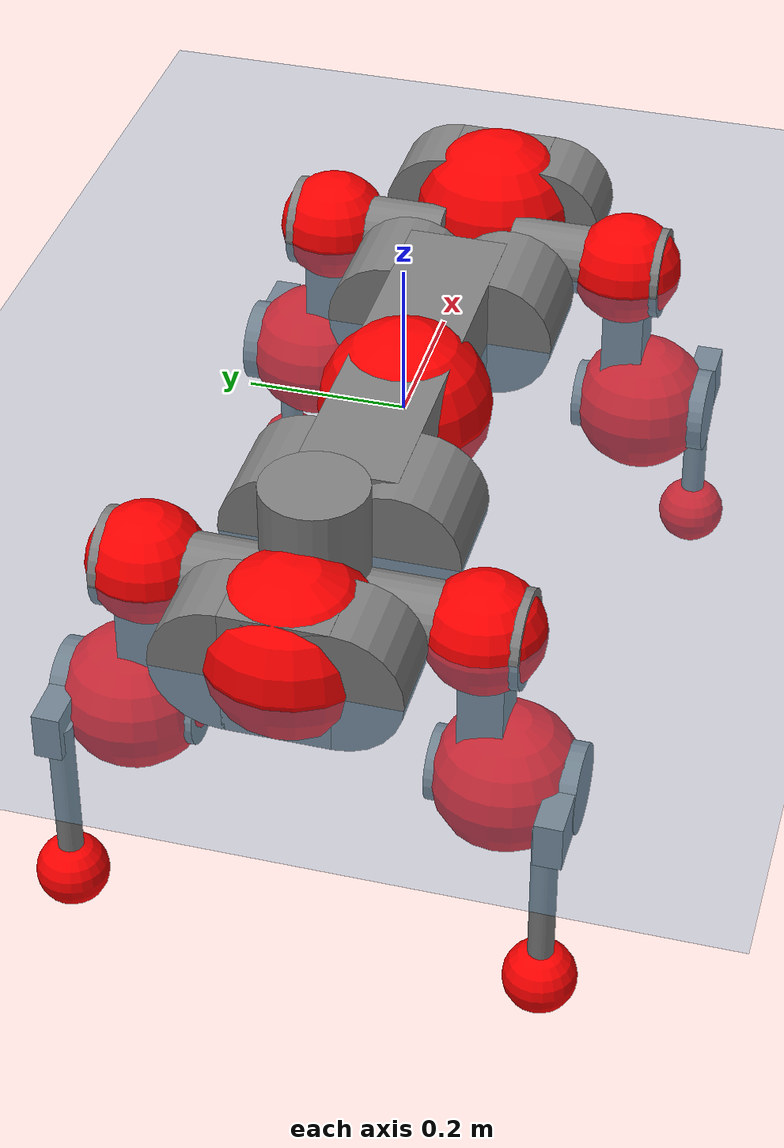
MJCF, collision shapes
<mujoco model="anymal_c">
  <compiler angle="radian" assetdir="assets" balanceinertia="true" inertiafromgeom="false"/>

  <option timestep="0.005" density="1.2" viscosity="2e-05"/>

  <size nkey="1"/>

  <visual>
    <quality shadowsize="8192"/>
    <map shadowclip="0.5"/>
  </visual>

  <default>
    <default class="/">
      <material specular="0" shininess="0.25"/>
      <geom contype="0" conaffinity="0" group="1" solref="-1000 -80"/>
      <site size="0.01 0.005 0.005" group="5"/>
      <general forcelimited="true" forcerange="-80 80" biastype="affine" gainprm="80" biasprm="0 -80 -2"/>
      <default class="anymal_c">
        <joint armature="0.01" damping="0.01" frictionloss="0.1"/>
        <default class="visual">
          <geom type="mesh" group="2"/>
          <default class="visual_zflip"/>
        </default>
        <default class="collision">
          <geom type="cylinder" group="3"/>
          <default class="foot">
            <geom size="0.03 0 0" type="sphere" condim="6" priority="1" friction="0.8 0.02 0.01" solimp="0.015 1 0.03"/>
          </default>
        </default>
      </default>
      <default class="reward_collision_sphere">
        <geom group="5" rgba="1 0 0 1"/>
      </default>
    </default>
  </default>

  <asset>
    <texture type="skybox" colorspace="auto" name="//unnamed_texture_0" builtin="gradient" rgb1="0.95 0.95 0.95" rgb2="0.95 0.95 0.95" width="100" height="600"/>
    <texture type="2d" colorspace="auto" name="texplane" builtin="checker" rgb1="0.345 0.575 0.748" rgb2="0.345 0.575 0.748" markrgb="1 1 1" width="512" height="512"/>
    <texture type="2d" colorspace="linear" name="base" file="base.png"/>
    <texture type="2d" colorspace="linear" name="top_shell" file="top_shell.png"/>
    <texture type="2d" colorspace="linear" name="bottom_shell" file="bottom_shell.png"/>
    <texture type="2d" colorspace="linear" name="remote" file="remote.png"/>
    <texture type="2d" colorspace="linear" name="hatch" file="hatch.png"/>
    <texture type="2d" colorspace="linear" name="handle" file="handle.png"/>
    <texture type="2d" colorspace="linear" name="face" file="face.png"/>
    <texture type="2d" colorspace="linear" name="battery" file="battery.png"/>
    <texture type="2d" colorspace="linear" name="lidar_cage" file="lidar_cage.png"/>
    <texture type="2d" colorspace="linear" name="depth_camera" file="depth_camera.png"/>
    <texture type="2d" colorspace="linear" name="wide_angle_camera" file="wide_angle_camera.png"/>
    <texture type="2d" colorspace="linear" name="lidar" file="lidar.png"/>
    <texture type="2d" colorspace="linear" name="drive" file="drive.png"/>
    <texture type="2d" colorspace="linear" name="hip_l" file="hip_l.png"/>
    <texture type="2d" colorspace="linear" name="shank_l" file="shank_l.png"/>
    <texture type="2d" colorspace="linear" name="foot" file="foot.png"/>
    <texture type="2d" colorspace="linear" name="thigh" file="thigh.png"/>
    <texture type="2d" colorspace="linear" name="shank_r" file="shank_r.png"/>
    <texture type="2d" colorspace="linear" name="hip_r" file="hip_r.png"/>
    <material name="MatPlane" class="/" texture="texplane" texuniform="true" texrepeat="2 2" specular="0.9" shininess="0.5"/>
    <material name="black_plastic" class="/" rgba="0.007 0.007 0.007 1"/>
    <material name="green" class="/" rgba="0.052 0.178 0.033 1"/>
    <material name="red" class="/" rgba="0.178 0.006 0.005 1"/>
    <material name="yellow" class="/" rgba="0.178 0.119 0.006 1"/>
    <material name="lwl" class="/" rgba="0.8 0.8 0.8 1"/>
    <material name="base" class="/" texture="base"/>
    <material name="top_shell" class="/" texture="top_shell"/>
    <material name="bottom_shell" class="/" texture="bottom_shell"/>
    <material name="hip_l" class="/" texture="hip_l"/>
    <material name="thigh" class="/" texture="thigh"/>
    <material name="shank_l" class="/" texture="shank_l"/>
    <material name="foot" class="/" texture="foot"/>
    <material name="hip_r" class="/" texture="hip_r"/>
    <material name="shank" class="/" texture="shank_r"/>
    <material name="hatch" class="/" texture="hatch"/>
    <material name="remote" class="/" texture="remote"/>
    <material name="handle" class="/" texture="handle"/>
    <material name="face" class="/" texture="face"/>
    <material name="depth_camera" class="/" texture="depth_camera"/>
    <material name="wide_angle_camera" class="/" texture="wide_angle_camera"/>
    <material name="battery" class="/" texture="battery"/>
    <material name="lidar_cage" class="/" texture="lidar_cage"/>
    <material name="lidar" class="/" texture="lidar"/>
    <material name="drive" class="/" texture="drive"/>
    <mesh name="base_0" class="/" file="base_0.obj"/>
    <mesh name="base_1" class="/" file="base_1.obj"/>
    <mesh name="base_2" class="/" file="base_2.obj"/>
    <mesh name="base_3" class="/" file="base_3.obj"/>
    <mesh name="base_4" class="/" file="base_4.obj"/>
    <mesh name="base_5" class="/" file="base_5.obj"/>
    <mesh name="top_shell" class="/" file="top_shell.obj"/>
    <mesh name="bottom_shell" class="/" file="bottom_shell.obj"/>
    <mesh name="remote" class="/" file="remote.obj"/>
    <mesh name="handle" class="/" file="handle.obj"/>
    <mesh name="face" class="/" file="face.obj"/>
    <mesh name="wide_angle_camera" class="/" file="wide_angle_camera.obj"/>
    <mesh name="depth_camera" class="/" file="depth_camera.obj"/>
    <mesh name="battery" class="/" file="battery.obj"/>
    <mesh name="lidar_cage" class="/" file="lidar_cage.obj"/>
    <mesh name="lidar" class="/" file="lidar.obj"/>
    <mesh name="drive" class="/" file="drive.obj"/>
    <mesh name="hip_l" class="/" file="hip_l.obj"/>
    <mesh name="thigh" class="/" file="thigh.obj"/>
    <mesh name="shank_l" class="/" file="shank_l.obj"/>
    <mesh name="foot" class="/" file="foot.obj"/>
    <mesh name="hip_r" class="/" file="hip_r.obj"/>
    <mesh name="hatch" class="/" file="hatch.obj"/>
    <mesh name="shank_r" class="/" file="shank_r.obj"/>
  </asset>

  <worldbody>
    <geom name="floor" class="/" size="100 100 0.125" type="plane" group="0" material="MatPlane"/>
    <light name="toplight_shadow" class="/" pos="0 0 5" dir="0.0990148 0.0990148 -0.990148" type="directional" ambient="0.04 0.04 0.04" diffuse="0.55 0.55 0.55" specular="0.12 0.12 0.12"/>
    <light name="toplight_fill" class="/" pos="0 0 5" dir="0.0990148 0.0990148 -0.990148" type="directional" castshadow="false" ambient="0.04 0.04 0.04" diffuse="0.3 0.3 0.3" specular="0.08 0.08 0.08"/>
    <body name="trunk" childclass="anymal_c" pos="0.00222486 -0.000695355 0.00543352" quat="0.999997 0.00134092 -0.000678449 -0.00166563">
      <inertial pos="0.00362127 -0.00290878 0.0313068" quat="0.487228 0.497845 0.498424 0.516074" mass="14.0662" diaginertia="0.776081 0.421186 0.0484263"/>
      <joint name="//unnamed_joint_0" type="free" armature="0" damping="0" frictionloss="0"/>
      <geom name="//unnamed_geom_1" class="visual" material="green" mesh="base_0"/>
      <geom name="//unnamed_geom_2" class="visual" material="yellow" mesh="base_1"/>
      <geom name="//unnamed_geom_3" class="visual" material="red" mesh="base_2"/>
      <geom name="//unnamed_geom_4" class="visual" material="black_plastic" mesh="base_3"/>
      <geom name="//unnamed_geom_5" class="visual" material="lwl" mesh="base_4"/>
      <geom name="//unnamed_geom_6" class="visual" material="base" mesh="base_5"/>
      <geom name="trunk_1" class="collision" size="0.266621 0.0643568 0.0827444" type="box"/>
      <geom name="trunk_2" class="collision" size="0.0827444 0.0666552" pos="0.231045 0.0661611 0" quat="0.707107 0 0.707107 0"/>
      <geom name="trunk_3" class="collision" size="0.0827444 0.0666552" pos="-0.231045 0.0661611 0" quat="0.707107 0 0.707107 0"/>
      <geom name="trunk_4" class="collision" size="0.0827444 0.0666552" pos="0.231045 -0.0661611 0" quat="0.707107 0 0.707107 0"/>
      <geom name="trunk_5" class="collision" size="0.0827444 0.0666552" pos="-0.231045 -0.0661611 0" quat="0.707107 0 0.707107 0"/>
      <geom name="//unnamed_geom_12" class="visual" material="top_shell" mesh="top_shell"/>
      <geom name="//unnamed_geom_13" class="visual" material="bottom_shell" mesh="bottom_shell"/>
      <geom name="//unnamed_geom_14" class="visual" material="remote" mesh="remote"/>
      <geom name="//unnamed_geom_15" class="visual" material="handle" mesh="handle"/>
      <geom name="//unnamed_geom_16" class="visual" pos="0.440314 0 0" quat="1 0 0 0" material="face" mesh="face"/>
      <geom name="trunk_6" class="collision" size="0.050566 0.0643568 0.0827444" pos="0.498739 0 0" type="box"/>
      <geom name="//unnamed_geom_18" class="collision" size="0.0827444 0.050566" pos="0.498739 0.0661611 0" quat="0.707107 0 0.707107 0"/>
      <geom name="//unnamed_geom_19" class="collision" size="0.0827444 0.050566" pos="0.498739 -0.0661611 0" quat="0.707107 0 0.707107 0"/>
      <geom name="//unnamed_geom_20" class="visual" pos="0.490387 0 -0.0195529" quat="0.965926 0 0.258819 0" material="depth_camera" mesh="depth_camera"/>
      <geom name="//unnamed_geom_21" class="visual" pos="0.544948 0 0.0112381" material="wide_angle_camera" mesh="wide_angle_camera"/>
      <geom name="//unnamed_geom_22" class="visual_zflip" pos="-0.440314 0 0" quat="0 0 0 1" material="face" mesh="face"/>
      <geom name="trunk_7" class="collision" size="0.050566 0.0643568 0.0827444" pos="-0.498739 0 0" quat="0 0 0 1" type="box"/>
      <geom name="//unnamed_geom_24" class="collision" size="0.0827444 0.050566" pos="-0.498739 -0.0661611 0" quat="0 -0.707107 0 0.707107"/>
      <geom name="//unnamed_geom_25" class="collision" size="0.0827444 0.050566" pos="-0.498739 0.0661611 0" quat="0 -0.707107 0 0.707107"/>
      <geom name="//unnamed_geom_26" class="visual" pos="-0.490387 0 -0.0195529" quat="0 -0.258819 0 0.965926" material="depth_camera" mesh="depth_camera"/>
      <geom name="//unnamed_geom_27" class="visual_zflip" pos="-0.544948 0 0.0112381" quat="0 0 0 1" material="wide_angle_camera" mesh="wide_angle_camera"/>
      <geom name="//unnamed_geom_28" class="visual" material="battery" mesh="battery"/>
      <geom name="//unnamed_geom_29" class="visual" pos="0 0.0707171 0.0241761" quat="0.683013 -0.183013 0.183013 0.683013" material="depth_camera" mesh="depth_camera"/>
      <geom name="//unnamed_geom_30" class="visual" pos="0 -0.0707171 0.0241761" quat="0.683013 0.183013 0.183013 -0.683013" material="depth_camera" mesh="depth_camera"/>
      <geom name="//unnamed_geom_31" class="visual" pos="-0.386669 0 0.0551773" quat="1 0 0 0" material="lidar_cage" mesh="lidar_cage"/>
      <geom name="trunk_8" class="collision" size="0.0643568 0.0551629" pos="-0.386669 0 0.10022"/>
      <geom name="//unnamed_geom_33" class="visual" pos="-0.386669 -4.60126e-05 0.106751" quat="0.707107 0 0 -0.707107" material="lidar" mesh="lidar"/>
      <geom name="//unnamed_geom_34" class="visual" pos="0.318577 0.0982274 3.35424e-09" quat="0.258819 0.965926 0 0" material="drive" mesh="drive"/>
      <geom name="//unnamed_geom_35" class="visual" pos="0.318577 -0.0982274 -3.35424e-09" quat="0.258819 -0.965926 0 0" material="drive" mesh="drive"/>
      <geom name="//unnamed_geom_36" class="visual" pos="-0.318577 0.0982274 -3.35424e-09" quat="0 0 0.965926 -0.258819" material="drive" mesh="drive"/>
      <geom name="//unnamed_geom_37" class="visual" pos="-0.318577 -0.0982274 3.35424e-09" quat="0 0 -0.965926 -0.258819" material="drive" mesh="drive"/>
      <geom name="//unnamed_geom_38" class="visual" pos="0.123224 0 0.0548019" quat="1 0 0 0" material="hatch" mesh="hatch"/>
      <geom name="//unnamed_geom_39" class="reward_collision_sphere" size="0.110326"/>
      <geom name="//unnamed_geom_40" class="reward_collision_sphere" size="0.110326" pos="0.478025 0 0"/>
      <geom name="//unnamed_geom_41" class="reward_collision_sphere" size="0.110326" pos="-0.478025 0 0"/>
      <site name="imu" pos="0.276515 0.00684593 0.0462863" size="0.00919382"/>
      <camera name="track" pos="0 -1.89032 0" quat="0.707107 0.707107 0 0" mode="trackcom"/>
      <camera name="ego_camera" pos="0.478025 0 -0.0300284" quat="-0.5 -0.5 0.5 0.5"/>
      <body name="LF_HIP" pos="0.319968 0.100804 -0.000130067" quat="0.258696 0.965959 3.26315e-06 -0.000164088">
        <inertial pos="0.0641936 -0.014733 -0.00108175" quat="-0.120111 0.718251 -0.112286 0.676077" mass="2.16959" diaginertia="0.00775439 0.00361352 0.000781695"/>
        <joint name="LF_HAA" pos="0 0 0" axis="0.999849 0.0172882 0.00169512" stiffness="0.00476638" range="-0.7138 0.494702" armature="0.00937348" damping="0.0158648" frictionloss="0.0932824"/>
        <geom name="//unnamed_geom_42" class="visual" pos="0 0.000197315 -3.24088e-05" quat="0.258819 -0.965926 0 0" material="hip_l" mesh="hip_l"/>
        <geom name="//unnamed_geom_43" class="visual" pos="0.0636304 -0.0754906 -0.0421463" quat="0.183013 -0.683013 0.683013 0.183013" material="drive" mesh="drive"/>
        <geom name="//unnamed_geom_44" class="collision" size="0.0459691 0.0643568" pos="0.0636304 -0.0113039 -0.00518366" quat="-0.353553 -0.612372 0.612372 -0.353553"/>
        <body name="LF_THIGH" pos="0.0663371 -0.0693074 -0.0353662" quat="0.183079 -0.683066 0.682943 0.183009">
          <inertial pos="0.0327675 -0.000221191 -0.185533" quat="0.992998 0.00119116 -0.0761048 0.0903451" mass="2.56405" diaginertia="0.0439923 0.023458 0.00107538"/>
          <joint name="LF_HFE" pos="0 0 0" axis="0.999997 -0.00140986 0.00212571" stiffness="0.00136979" range="-3.14377 3.1307" armature="0.00988716" damping="0.000789333" frictionloss="0.0930202"/>
          <geom name="//unnamed_geom_45" class="visual" pos="0.00233019 3.67184e-06 0" quat="0.707107 0 0 -0.707107" material="thigh" mesh="thigh"/>
          <geom name="//unnamed_geom_46" class="collision" size="0.0597598 0.0367753" pos="0.0424911 0 0" quat="0.5 0.5 -0.5 -0.5"/>
          <geom name="//unnamed_geom_47" class="collision" size="0.0344768 0.0275815 0.129922" pos="0.0318683 0 -0.106086" quat="0.707107 0 0 -0.707107" type="box"/>
          <geom name="//unnamed_geom_48" class="visual" pos="0.106546 0 -0.213953" quat="1 0 0 0" material="drive" mesh="drive"/>
          <geom name="//unnamed_geom_49" class="collision" size="0.0459691 0.0643568" pos="0.032187 0 -0.213953" quat="0.707107 0 0.707107 0"/>
          <geom name="//unnamed_geom_50" class="reward_collision_sphere" size="0.0735506" pos="0.0265569 0 0"/>
          <body name="LF_SHANK" pos="0.109523 -0.00231702 -0.213294" quat="1 2.66497e-05 -6.81559e-05 -6.31145e-05">
            <inertial pos="0.0123365 -0.0530899 -0.0611794" quat="0.993113 -0.115407 4.43755e-05 -0.02019" mass="0.450165" diaginertia="0.014338 0.00706988 0.000266437"/>
            <joint name="LF_KFE" pos="0 0 0" axis="0.999985 -0.00310759 0.00445708" range="-3.01433 3.13587" armature="0.00832906" damping="0" frictionloss="0.065251"/>
            <geom name="//unnamed_geom_51" class="visual" pos="0.000759824 0.00405142 0" quat="0.707107 0 0 -0.707107" material="shank_l" mesh="shank_l"/>
            <geom name="LF_kfe_act" class="collision" size="0.0551629 0.0183876" pos="0.0212455 0 0" quat="0.5 0.5 -0.5 -0.5"/>
            <geom name="//unnamed_geom_53" class="collision" size="0.0528636 0.0310291 0.0174683" pos="0.0212455 -0.0543457 0" quat="0.5 0.5 -0.5 -0.5" type="box"/>
            <geom name="//unnamed_geom_54" class="visual" pos="0.0138625 -0.0818211 -0.253718" quat="0.382683 0 0 -0.92388" material="foot" mesh="foot"/>
            <geom name="LF_calf" class="collision" size="0.0160892 0.129865" pos="0.0138627 -0.0831267 -0.126859" quat="0.707107 0 0 -0.707107"/>
            <geom name="LF_foot" class="foot" size="0.031858" pos="0.0138627 -0.0831267 -0.236827" quat="0.707107 0 0 -0.707107"/>
            <geom name="//unnamed_geom_57" class="reward_collision_sphere" size="0.0919382" pos="-0.0531138 0 0"/>
            <geom name="//unnamed_geom_58" class="reward_collision_sphere" size="0.0459691" pos="0.0138627 -0.0831267 -0.236827"/>
            <site name="LF_foot" class="foot" pos="0.0138627 -0.0831267 -0.236827" quat="0.707107 0 0 -0.707107" size="0.00919382"/>
          </body>
        </body>
      </body>
      <body name="RF_HIP" pos="0.318766 -0.0992876 0.00160883" quat="0.256239 -0.966612 0.000926438 0.00107105">
        <inertial pos="0.0588367 0.0151463 -0.00493836" quat="0.120422 0.688261 0.105958 0.707509" mass="1.95742" diaginertia="0.00795818 0.00360632 0.000786679"/>
        <joint name="RF_HAA" pos="0 0 0" axis="1 -0.000350624 -9.3085e-05" stiffness="0.0114091" range="-0.384349 0.717106" armature="0.0101743" damping="0.0114077" frictionloss="0.0881239"/>
        <geom name="//unnamed_geom_59" class="visual" pos="0 -0.000197313 -3.24087e-05" quat="0.258819 0.965926 0 0" material="hip_r" mesh="hip_r"/>
        <geom name="//unnamed_geom_60" class="visual" pos="0.0636304 0.0754906 -0.0421463" quat="0.183013 0.683013 0.683013 -0.183013" material="drive" mesh="drive"/>
        <geom name="//unnamed_geom_61" class="collision" size="0.0459691 0.0643568" pos="0.0636304 0.0113039 -0.00518366" quat="-0.353553 0.612372 0.612372 0.353553"/>
        <body name="RF_THIGH" pos="0.0641949 0.0687605 -0.0339092" quat="0.183003 0.683149 0.682885 -0.182991">
          <inertial pos="0.0320531 -0.000607447 -0.185908" quat="0.991467 -0.00717056 -0.0853257 0.0982905" mass="2.33219" diaginertia="0.041531 0.0233999 0.00101555"/>
          <joint name="RF_HFE" pos="0 0 0" axis="0.999988 -0.00220766 0.00439975" range="-3.1471 3.14133" armature="0.00866042" damping="0.03982" frictionloss="0.103086"/>
          <geom name="//unnamed_geom_62" class="visual" pos="0.00233019 3.67184e-06 0" quat="0.707107 0 0 -0.707107" material="thigh" mesh="thigh"/>
          <geom name="//unnamed_geom_63" class="collision" size="0.0597598 0.0367753" pos="0.0424911 0 0" quat="0.5 0.5 0.5 0.5"/>
          <geom name="//unnamed_geom_64" class="collision" size="0.0344768 0.0275815 0.129922" pos="0.0318683 0 -0.106086" quat="0.707107 0 0 0.707107" type="box"/>
          <geom name="//unnamed_geom_65" class="visual" pos="0.106546 0 -0.213953" quat="1 0 0 0" material="drive" mesh="drive"/>
          <geom name="//unnamed_geom_66" class="collision" size="0.0459691 0.0643568" pos="0.032187 0 -0.213953" quat="0.707107 0 0.707107 0"/>
          <geom name="//unnamed_geom_67" class="reward_collision_sphere" size="0.0735506" pos="0.0265569 0 0"/>
          <body name="RF_SHANK" pos="0.11132 0.00136035 -0.212543" quat="0.999999 -0.000549641 -0.00107972 -8.45627e-05">
            <inertial pos="0.00379796 0.062096 -0.0628936" quat="0.989051 0.145316 -0.00818021 0.0243822" mass="0.467344" diaginertia="0.0142309 0.0070121 0.000283626"/>
            <joint name="RF_KFE" pos="0 0 0" axis="0.999917 -0.00216567 -0.012698" range="-3.12177 3.09235" armature="0.00966212" damping="0.0135928" frictionloss="0.0890344"/>
            <geom name="//unnamed_geom_68" class="visual" pos="0.00075982 -0.00405142 0" quat="0.707107 0 0 0.707107" material="shank" mesh="shank_r"/>
            <geom name="RF_kfe_act" class="collision" size="0.0551629 0.0183876" pos="0.0212455 0 0" quat="0.5 0.5 0.5 0.5"/>
            <geom name="//unnamed_geom_70" class="collision" size="0.0528636 0.0310291 0.0174683" pos="0.0212455 0.0543457 0" quat="0.5 0.5 0.5 0.5" type="box"/>
            <geom name="//unnamed_geom_71" class="visual" pos="0.0138629 0.0818211 -0.253718" quat="0.382683 0 0 0.92388" material="foot" mesh="foot"/>
            <geom name="RF_calf" class="collision" size="0.0160892 0.129865" pos="0.0138627 0.0831267 -0.126859" quat="0.707107 0 0 0.707107"/>
            <geom name="RF_foot" class="foot" size="0.0316685" pos="0.0138627 0.0831267 -0.236827" quat="0.707107 0 0 0.707107"/>
            <geom name="//unnamed_geom_74" class="reward_collision_sphere" size="0.0919382" pos="-0.0531138 0 0"/>
            <geom name="//unnamed_geom_75" class="reward_collision_sphere" size="0.0459691" pos="0.0138627 0.0831267 -0.236827"/>
            <site name="RF_foot" class="foot" pos="0.0138627 0.0831267 -0.236827" quat="0.707107 0 0 0.707107" size="0.00919382"/>
          </body>
        </body>
      </body>
      <body name="LH_HIP" pos="-0.316937 0.0995597 -0.00116975" quat="0.00031401 0.00127709 0.965921 -0.258835">
        <inertial pos="0.058273 0.0184163 -0.000735004" quat="0.135919 0.67596 0.122668 0.713833" mass="2.10915" diaginertia="0.00787291 0.00378333 0.000807626"/>
        <joint name="LH_HAA" pos="0 0 0" axis="0.999858 -0.0109344 -0.0127884" stiffness="0.00489887" range="-0.420624 0.634941" armature="0.00771526" damping="0.0157457" frictionloss="0.0956089"/>
        <geom name="//unnamed_geom_76" class="visual" pos="0 -0.000197313 -3.24087e-05" quat="-0.258819 -0.965926 0 0" material="hip_r" mesh="hip_r"/>
        <geom name="//unnamed_geom_77" class="visual" pos="0.0636304 0.0754906 -0.0421463" quat="0.183013 0.683013 0.683013 -0.183013" material="drive" mesh="drive"/>
        <geom name="//unnamed_geom_78" class="collision" size="0.0459691 0.0643568" pos="0.0636304 0.0113039 -0.00518366" quat="-0.353553 0.612372 0.612372 0.353553"/>
        <body name="LH_THIGH" pos="0.0618353 0.0716184 -0.0383106" quat="0.183454 0.683339 0.682476 -0.183357">
          <inertial pos="0.0265951 0.00172349 -0.178392" quat="0.992715 -0.00621131 -0.0809121 0.0890605" mass="2.15828" diaginertia="0.0354186 0.0212884 0.000900844"/>
          <joint name="LH_HFE" pos="0 0 0" axis="0.999577 -0.0174545 -0.0232422" range="-3.12492 3.15891" armature="0.00929162" damping="0.0385785" frictionloss="0.0963311"/>
          <geom name="//unnamed_geom_79" class="visual" pos="0.00233019 3.67184e-06 0" quat="0.707107 0 0 -0.707107" material="thigh" mesh="thigh"/>
          <geom name="//unnamed_geom_80" class="collision" size="0.0597598 0.0367753" pos="0.0424911 0 0" quat="0.5 0.5 -0.5 -0.5"/>
          <geom name="//unnamed_geom_81" class="collision" size="0.0344768 0.0275815 0.129922" pos="0.0318683 0 -0.106086" quat="0.707107 0 0 -0.707107" type="box"/>
          <geom name="//unnamed_geom_82" class="visual" pos="0.106546 0 -0.213953" quat="1 0 0 0" material="drive" mesh="drive"/>
          <geom name="//unnamed_geom_83" class="collision" size="0.0459691 0.0643568" pos="0.032187 0 -0.213953" quat="0.707107 0 0.707107 0"/>
          <geom name="//unnamed_geom_84" class="reward_collision_sphere" size="0.0735506" pos="0.0265569 0 0"/>
          <body name="LH_SHANK" pos="0.10686 -0.0012485 -0.211108" quat="0.999999 3.15962e-05 -1.11061e-05 -0.00118605">
            <inertial pos="0.0109234 0.0565258 -0.0548427" quat="0.993538 0.106308 -0.014834 0.0368965" mass="0.472673" diaginertia="0.0139025 0.00706294 0.000275927"/>
            <joint name="LH_KFE" pos="0 0 0" axis="0.999978 -0.00520309 0.00414796" range="-3.10031 3.26965" armature="0.00725774" damping="0.0353377" frictionloss="0.0955928"/>
            <geom name="//unnamed_geom_85" class="visual" pos="0.00075982 -0.00405142 0" quat="-0.707107 0 0 -0.707107" material="shank" mesh="shank_r"/>
            <geom name="LH_kfe_act" class="collision" size="0.0551629 0.0183876" pos="0.0212455 0 0" quat="0.5 0.5 -0.5 -0.5"/>
            <geom name="//unnamed_geom_87" class="collision" size="0.0528636 0.0310291 0.0174683" pos="0.0212455 0.0543457 0" quat="0.5 0.5 -0.5 -0.5" type="box"/>
            <geom name="//unnamed_geom_88" class="visual" pos="0.0138629 0.0818211 -0.253718" quat="-0.382683 0 0 -0.92388" material="foot" mesh="foot"/>
            <geom name="LH_calf" class="collision" size="0.0160892 0.129865" pos="0.0138627 0.0831267 -0.126859" quat="0.707107 0 0 -0.707107"/>
            <geom name="LH_foot" class="foot" size="0.0285066" pos="0.0138627 0.0831267 -0.236827" quat="0.707107 0 0 -0.707107"/>
            <geom name="//unnamed_geom_91" class="reward_collision_sphere" size="0.0919382" pos="-0.0531138 0 0"/>
            <geom name="//unnamed_geom_92" class="reward_collision_sphere" size="0.0459691" pos="0.0138627 0.0831267 -0.236827"/>
            <site name="LH_foot" class="foot" pos="0.0138627 0.0831267 -0.236827" quat="0.707107 0 0 -0.707107" size="0.00919382"/>
          </body>
        </body>
      </body>
      <body name="RH_HIP" pos="-0.324907 -0.0975176 -0.0040273" quat="-0.000410916 0.000307575 -0.965799 -0.259292">
        <inertial pos="0.0628332 -0.0141025 -0.00658552" quat="-0.145853 0.706745 -0.124384 0.681004" mass="2.18025" diaginertia="0.00694397 0.00346942 0.000733715"/>
        <joint name="RH_HAA" pos="0 0 0" axis="0.99948 -0.0313186 0.00762936" range="-0.739581 0.491486" armature="0.00937117" damping="0.00776347" frictionloss="0.0632085"/>
        <geom name="//unnamed_geom_93" class="visual" pos="0 0.000197315 -3.24088e-05" quat="-0.258819 0.965926 0 0" material="hip_l" mesh="hip_l"/>
        <geom name="//unnamed_geom_94" class="visual" pos="0.0636304 -0.0754906 -0.0421463" quat="-0.183013 0.683013 -0.683013 -0.183013" material="drive" mesh="drive"/>
        <geom name="//unnamed_geom_95" class="collision" size="0.0459691 0.0643568" pos="0.0636304 -0.0113039 -0.00518366" quat="0.353553 0.612372 -0.612372 0.353553"/>
        <body name="RH_THIGH" pos="0.0616525 -0.0689386 -0.0294134" quat="-0.182786 0.683853 -0.68244 -0.18224">
          <inertial pos="0.0340946 -0.000313281 -0.18064" quat="0.993184 -0.00270777 -0.0836379 0.0811338" mass="2.49996" diaginertia="0.0382116 0.022075 0.00100137"/>
          <joint name="RH_HFE" pos="0 0 0" axis="0.999995 -0.00296274 -0.00140666" stiffness="0.00219917" range="-3.14246 3.18642" armature="0.00890825" damping="0" frictionloss="0.0814983"/>
          <geom name="//unnamed_geom_96" class="visual" pos="0.00233019 3.67184e-06 0" quat="0.707107 0 0 -0.707107" material="thigh" mesh="thigh"/>
          <geom name="//unnamed_geom_97" class="collision" size="0.0597598 0.0367753" pos="0.0424911 0 0" quat="0.5 0.5 0.5 0.5"/>
          <geom name="//unnamed_geom_98" class="collision" size="0.0344768 0.0275815 0.129922" pos="0.0318683 0 -0.106086" quat="0.707107 0 0 0.707107" type="box"/>
          <geom name="//unnamed_geom_99" class="visual" pos="0.106546 0 -0.213953" quat="1 0 0 0" material="drive" mesh="drive"/>
          <geom name="//unnamed_geom_100" class="collision" size="0.0459691 0.0643568" pos="0.032187 0 -0.213953" quat="0.707107 0 0.707107 0"/>
          <geom name="//unnamed_geom_101" class="reward_collision_sphere" size="0.0735506" pos="0.0265569 0 0"/>
          <body name="RH_SHANK" pos="0.111599 -0.00190971 -0.21181" quat="0.999995 -0.00204719 -0.0023243 -0.000953071">
            <inertial pos="0.00788452 -0.058003 -0.0612794" quat="0.992108 -0.123448 -0.017012 -0.0139004" mass="0.440891" diaginertia="0.0132636 0.00695687 0.000280506"/>
            <joint name="RH_KFE" pos="0 0 0" axis="0.999544 0.027462 -0.0125394" stiffness="0.0209873" range="-3.20618 3.09351" armature="0.00894186" damping="0.0251094" frictionloss="0.0816887"/>
            <geom name="//unnamed_geom_102" class="visual" pos="0.000759824 0.00405142 0" quat="0.707107 0 0 -0.707107" material="shank_l" mesh="shank_l"/>
            <geom name="RH_kfe_act" class="collision" size="0.0551629 0.0183876" pos="0.0212455 0 0" quat="0.5 0.5 0.5 0.5"/>
            <geom name="//unnamed_geom_104" class="collision" size="0.0528636 0.0310291 0.0174683" pos="0.0212455 -0.0543457 0" quat="0.5 0.5 0.5 0.5" type="box"/>
            <geom name="//unnamed_geom_105" class="visual" pos="0.0138625 -0.0818211 -0.253718" quat="0.382683 0 0 -0.92388" material="foot" mesh="foot"/>
            <geom name="RH_calf" class="collision" size="0.0160892 0.129865" pos="0.0138627 -0.0831267 -0.126859" quat="0.707107 0 0 0.707107"/>
            <geom name="RH_foot" class="foot" size="0.0230945" pos="0.0138627 -0.0831267 -0.236827" quat="0.707107 0 0 0.707107"/>
            <geom name="//unnamed_geom_108" class="reward_collision_sphere" size="0.0919382" pos="-0.0531138 0 0"/>
            <geom name="//unnamed_geom_109" class="reward_collision_sphere" size="0.0459691" pos="0.0138627 -0.0831267 -0.236827"/>
            <site name="RH_foot" class="foot" pos="0.0138627 -0.0831267 -0.236827" quat="0.707107 0 0 0.707107" size="0.00919382"/>
          </body>
        </body>
      </body>
    </body>
  </worldbody>

  <contact>
    <pair class="/" geom1="floor" geom2="LF_foot" name="//unnamed_contact_0"/>
    <pair class="/" geom1="floor" geom2="RF_foot" name="//unnamed_contact_1"/>
    <pair class="/" geom1="floor" geom2="LH_foot" name="//unnamed_contact_2"/>
    <pair class="/" geom1="floor" geom2="RH_foot" name="//unnamed_contact_3"/>
  </contact>

  <actuator>
    <general name="LF_HAA" class="/" joint="LF_HAA" forcerange="-75.9005 75.9005" gainprm="76.4865" biasprm="0 -76.4865 -2.12343"/>
    <general name="LF_HFE" class="/" joint="LF_HFE" forcerange="-81.2238 81.2238" gainprm="76.4865" biasprm="0 -76.4865 -2.12343"/>
    <general name="LF_KFE" class="/" joint="LF_KFE" forcerange="-73.432 73.432" gainprm="76.4865" biasprm="0 -76.4865 -2.12343"/>
    <general name="RF_HAA" class="/" joint="RF_HAA" forcerange="-67.705 67.705" gainprm="76.4865" biasprm="0 -76.4865 -2.12343"/>
    <general name="RF_HFE" class="/" joint="RF_HFE" forcerange="-74.9306 74.9306" gainprm="76.4865" biasprm="0 -76.4865 -2.12343"/>
    <general name="RF_KFE" class="/" joint="RF_KFE" forcerange="-75.3448 75.3448" gainprm="76.4865" biasprm="0 -76.4865 -2.12343"/>
    <general name="LH_HAA" class="/" joint="LH_HAA" forcerange="-74.9595 74.9595" gainprm="76.4865" biasprm="0 -76.4865 -2.12343"/>
    <general name="LH_HFE" class="/" joint="LH_HFE" forcerange="-88.2519 88.2519" gainprm="76.4865" biasprm="0 -76.4865 -2.12343"/>
    <general name="LH_KFE" class="/" joint="LH_KFE" forcerange="-62.5843 62.5843" gainprm="76.4865" biasprm="0 -76.4865 -2.12343"/>
    <general name="RH_HAA" class="/" joint="RH_HAA" forcerange="-73.526 73.526" gainprm="76.4865" biasprm="0 -76.4865 -2.12343"/>
    <general name="RH_HFE" class="/" joint="RH_HFE" forcerange="-69.3436 69.3436" gainprm="76.4865" biasprm="0 -76.4865 -2.12343"/>
    <general name="RH_KFE" class="/" joint="RH_KFE" forcerange="-72.6631 72.6631" gainprm="76.4865" biasprm="0 -76.4865 -2.12343"/>
  </actuator>

  <sensor>
    <gyro site="imu" name="imu_angular_velocity"/>
    <velocimeter site="imu" name="imu_linear_velocity"/>
    <framelinvel objtype="site" objname="LF_foot" name="LF_foot_global_linear_velocity"/>
    <framelinvel objtype="site" objname="RF_foot" name="RF_foot_global_linear_velocity"/>
    <framelinvel objtype="site" objname="LH_foot" name="LH_foot_global_linear_velocity"/>
    <framelinvel objtype="site" objname="RH_foot" name="RH_foot_global_linear_velocity"/>
  </sensor>

  <keyframe>
    <key name="home" qpos="0 0 0.55 1 0 0 0 0 0.4 -0.8 0 -0.4 0.8 0 -0.4 0.8 0 0.4 -0.8"/>
  </keyframe>
</mujoco>
